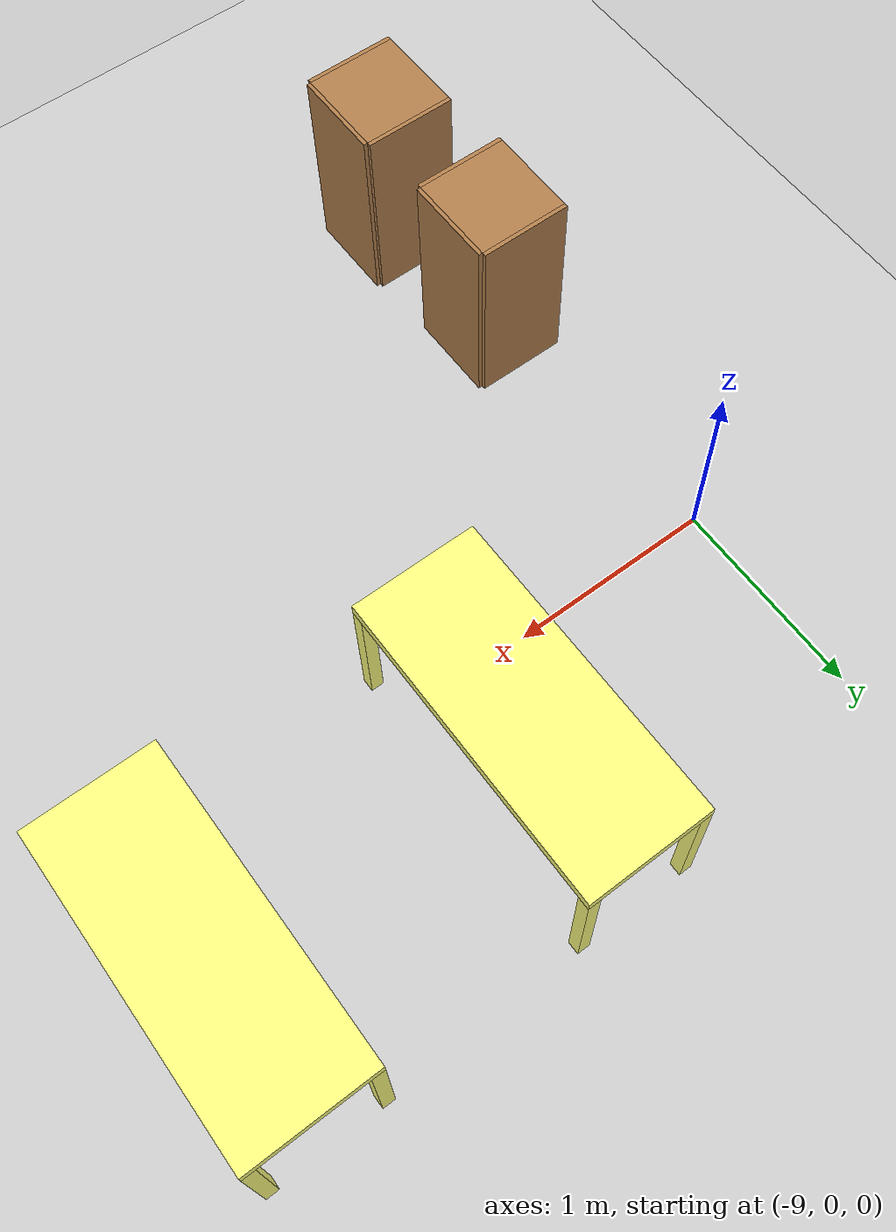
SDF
<sdf version="1.6">
 <world name="default">
  <model name="ground_plane">
   <static>1</static>
   <link name="link">
    <collision name="collision">
     <geometry><plane><normal>0 0 1</normal><size>100 100</size></plane></geometry>
     <surface><friction><ode><mu>100</mu><mu2>50</mu2></ode></friction></surface>
    </collision>
    <visual name="visual">
     <cast_shadows>0</cast_shadows>
     <geometry><plane><normal>0 0 1</normal><size>100 100</size></plane></geometry>
     <material>
      <script><uri>file://media/materials/scripts/gazebo.material</uri><name>Gazebo/Grey</name></script>
     </material>
    </visual>
   </link>
  </model>
  <model name="table_clone_2">
   <link name="link_0">
    <pose>0 2e-06 0.304 0 -0 0</pose>
    <inertial>
     <mass>1</mass>
     <inertia>
      <ixx>0.166667</ixx>
      <ixy>0</ixy>
      <ixz>0</ixz>
      <iyy>0.166667</iyy>
      <iyz>0</iyz>
      <izz>0.166667</izz>
     </inertia>
    </inertial>
    <visual name="visual">
     <geometry><box><size>0.6 1.5 0.06</size></box></geometry>
     <material>
      <lighting>1</lighting>
      <script><uri>file://media/materials/scripts/gazebo.material</uri><name>Gazebo/Grey</name></script>
      <shader type="pixel"><normal_map>__default__</normal_map></shader>
      <ambient>1 1 0.5 1</ambient>
      <diffuse>0.7 0.7 0.7 1</diffuse>
      <specular>0.01 0.01 0.01 1</specular>
      <emissive>0 0 0 1</emissive>
     </material>
    </visual>
    <collision name="collision">
     <geometry><box><size>0.6 1.5 0.06</size></box></geometry>
     <surface>
      <friction>
       <ode><mu>1</mu><mu2>1</mu2><fdir1>0 0 0</fdir1><slip1>0</slip1><slip2>0</slip2></ode>
       <torsional>
        <coefficient>1</coefficient>
        <patch_radius>0</patch_radius>
        <surface_radius>0</surface_radius>
        <use_patch_radius>1</use_patch_radius>
        <ode><slip>0</slip></ode>
       </torsional>
      </friction>
      <bounce><restitution_coefficient>0</restitution_coefficient><threshold>1e+06</threshold></bounce>
      <contact>
       <collide_without_contact>0</collide_without_contact>
       <collide_without_contact_bitmask>1</collide_without_contact_bitmask>
       <collide_bitmask>1</collide_bitmask>
       <ode>
        <soft_cfm>0</soft_cfm>
        <soft_erp>0.2</soft_erp>
        <kp>1e+13</kp>
        <kd>1</kd>
        <max_vel>0.01</max_vel>
        <min_depth>0</min_depth>
       </ode>
       <bullet>
        <split_impulse>1</split_impulse>
        <split_impulse_penetration_threshold>-0.01</split_impulse_penetration_threshold>
        <soft_cfm>0</soft_cfm>
        <soft_erp>0.2</soft_erp>
        <kp>1e+13</kp>
        <kd>1</kd>
       </bullet>
      </contact>
     </surface>
    </collision>
   </link>
   <link name="link_1">
    <pose>0.27 -0.719998 -0.076 0 -0 0</pose>
    <inertial>
     <mass>1</mass>
     <inertia>
      <ixx>0.166667</ixx>
      <ixy>0</ixy>
      <ixz>0</ixz>
      <iyy>0.166667</iyy>
      <iyz>0</iyz>
      <izz>0.166667</izz>
     </inertia>
    </inertial>
    <visual name="visual">
     <geometry><box><size>0.06 0.06 0.7</size></box></geometry>
     <material>
      <lighting>1</lighting>
      <script><uri>file://media/materials/scripts/gazebo.material</uri><name>Gazebo/Grey</name></script>
      <shader type="pixel"><normal_map>__default__</normal_map></shader>
      <ambient>1 1 0.5 1</ambient>
      <diffuse>0.7 0.7 0.7 1</diffuse>
      <specular>0.01 0.01 0.01 1</specular>
      <emissive>0 0 0 1</emissive>
     </material>
    </visual>
    <collision name="collision">
     <geometry><box><size>0.06 0.06 0.7</size></box></geometry>
     <surface>
      <friction>
       <ode><mu>1</mu><mu2>1</mu2><fdir1>0 0 0</fdir1><slip1>0</slip1><slip2>0</slip2></ode>
       <torsional>
        <coefficient>1</coefficient>
        <patch_radius>0</patch_radius>
        <surface_radius>0</surface_radius>
        <use_patch_radius>1</use_patch_radius>
        <ode><slip>0</slip></ode>
       </torsional>
      </friction>
      <bounce><restitution_coefficient>0</restitution_coefficient><threshold>1e+06</threshold></bounce>
      <contact>
       <collide_without_contact>0</collide_without_contact>
       <collide_without_contact_bitmask>1</collide_without_contact_bitmask>
       <collide_bitmask>1</collide_bitmask>
       <ode>
        <soft_cfm>0</soft_cfm>
        <soft_erp>0.2</soft_erp>
        <kp>1e+13</kp>
        <kd>1</kd>
        <max_vel>0.01</max_vel>
        <min_depth>0</min_depth>
       </ode>
       <bullet>
        <split_impulse>1</split_impulse>
        <split_impulse_penetration_threshold>-0.01</split_impulse_penetration_threshold>
        <soft_cfm>0</soft_cfm>
        <soft_erp>0.2</soft_erp>
        <kp>1e+13</kp>
        <kd>1</kd>
       </bullet>
      </contact>
     </surface>
    </collision>
   </link>
   <link name="link_1_clone">
    <pose>-0.27 -0.719998 -0.076 0 -0 0</pose>
    <inertial>
     <mass>1</mass>
     <inertia>
      <ixx>0.166667</ixx>
      <ixy>0</ixy>
      <ixz>0</ixz>
      <iyy>0.166667</iyy>
      <iyz>0</iyz>
      <izz>0.166667</izz>
     </inertia>
    </inertial>
    <visual name="visual">
     <geometry><box><size>0.06 0.06 0.7</size></box></geometry>
     <material>
      <lighting>1</lighting>
      <script><uri>file://media/materials/scripts/gazebo.material</uri><name>Gazebo/Grey</name></script>
      <shader type="pixel"><normal_map>__default__</normal_map></shader>
      <ambient>1 1 0.5 1</ambient>
      <diffuse>0.7 0.7 0.7 1</diffuse>
      <specular>0.01 0.01 0.01 1</specular>
      <emissive>0 0 0 1</emissive>
     </material>
    </visual>
    <collision name="collision">
     <geometry><box><size>0.06 0.06 0.7</size></box></geometry>
     <surface>
      <friction>
       <ode><mu>1</mu><mu2>1</mu2><fdir1>0 0 0</fdir1><slip1>0</slip1><slip2>0</slip2></ode>
       <torsional>
        <coefficient>1</coefficient>
        <patch_radius>0</patch_radius>
        <surface_radius>0</surface_radius>
        <use_patch_radius>1</use_patch_radius>
        <ode><slip>0</slip></ode>
       </torsional>
      </friction>
      <bounce><restitution_coefficient>0</restitution_coefficient><threshold>1e+06</threshold></bounce>
      <contact>
       <collide_without_contact>0</collide_without_contact>
       <collide_without_contact_bitmask>1</collide_without_contact_bitmask>
       <collide_bitmask>1</collide_bitmask>
       <ode>
        <soft_cfm>0</soft_cfm>
        <soft_erp>0.2</soft_erp>
        <kp>1e+13</kp>
        <kd>1</kd>
        <max_vel>0.01</max_vel>
        <min_depth>0</min_depth>
       </ode>
       <bullet>
        <split_impulse>1</split_impulse>
        <split_impulse_penetration_threshold>-0.01</split_impulse_penetration_threshold>
        <soft_cfm>0</soft_cfm>
        <soft_erp>0.2</soft_erp>
        <kp>1e+13</kp>
        <kd>1</kd>
       </bullet>
      </contact>
     </surface>
    </collision>
   </link>
   <link name="link_1_clone_0">
    <pose>0.27 0.720002 -0.076 0 -0 0</pose>
    <inertial>
     <mass>1</mass>
     <inertia>
      <ixx>0.166667</ixx>
      <ixy>0</ixy>
      <ixz>0</ixz>
      <iyy>0.166667</iyy>
      <iyz>0</iyz>
      <izz>0.166667</izz>
     </inertia>
    </inertial>
    <visual name="visual">
     <geometry><box><size>0.06 0.06 0.7</size></box></geometry>
     <material>
      <lighting>1</lighting>
      <script><uri>file://media/materials/scripts/gazebo.material</uri><name>Gazebo/Grey</name></script>
      <shader type="pixel"><normal_map>__default__</normal_map></shader>
      <ambient>1 1 0.5 1</ambient>
      <diffuse>0.7 0.7 0.7 1</diffuse>
      <specular>0.01 0.01 0.01 1</specular>
      <emissive>0 0 0 1</emissive>
     </material>
    </visual>
    <collision name="collision">
     <geometry><box><size>0.06 0.06 0.7</size></box></geometry>
     <surface>
      <friction>
       <ode><mu>1</mu><mu2>1</mu2><fdir1>0 0 0</fdir1><slip1>0</slip1><slip2>0</slip2></ode>
       <torsional>
        <coefficient>1</coefficient>
        <patch_radius>0</patch_radius>
        <surface_radius>0</surface_radius>
        <use_patch_radius>1</use_patch_radius>
        <ode><slip>0</slip></ode>
       </torsional>
      </friction>
      <bounce><restitution_coefficient>0</restitution_coefficient><threshold>1e+06</threshold></bounce>
      <contact>
       <collide_without_contact>0</collide_without_contact>
       <collide_without_contact_bitmask>1</collide_without_contact_bitmask>
       <collide_bitmask>1</collide_bitmask>
       <ode>
        <soft_cfm>0</soft_cfm>
        <soft_erp>0.2</soft_erp>
        <kp>1e+13</kp>
        <kd>1</kd>
        <max_vel>0.01</max_vel>
        <min_depth>0</min_depth>
       </ode>
       <bullet>
        <split_impulse>1</split_impulse>
        <split_impulse_penetration_threshold>-0.01</split_impulse_penetration_threshold>
        <soft_cfm>0</soft_cfm>
        <soft_erp>0.2</soft_erp>
        <kp>1e+13</kp>
        <kd>1</kd>
       </bullet>
      </contact>
     </surface>
    </collision>
   </link>
   <link name="link_1_clone_1">
    <pose>-0.27 0.720002 -0.076 0 -0 0</pose>
    <inertial>
     <mass>1</mass>
     <inertia>
      <ixx>0.166667</ixx>
      <ixy>0</ixy>
      <ixz>0</ixz>
      <iyy>0.166667</iyy>
      <iyz>0</iyz>
      <izz>0.166667</izz>
     </inertia>
    </inertial>
    <visual name="visual">
     <geometry><box><size>0.06 0.06 0.7</size></box></geometry>
     <material>
      <lighting>1</lighting>
      <script><uri>file://media/materials/scripts/gazebo.material</uri><name>Gazebo/Grey</name></script>
      <shader type="pixel"><normal_map>__default__</normal_map></shader>
      <ambient>1 1 0.5 1</ambient>
      <diffuse>0.7 0.7 0.7 1</diffuse>
      <specular>0.01 0.01 0.01 1</specular>
      <emissive>0 0 0 1</emissive>
     </material>
    </visual>
    <collision name="collision">
     <geometry><box><size>0.06 0.06 0.7</size></box></geometry>
     <surface>
      <friction>
       <ode><mu>1</mu><mu2>1</mu2><fdir1>0 0 0</fdir1><slip1>0</slip1><slip2>0</slip2></ode>
       <torsional>
        <coefficient>1</coefficient>
        <patch_radius>0</patch_radius>
        <surface_radius>0</surface_radius>
        <use_patch_radius>1</use_patch_radius>
        <ode><slip>0</slip></ode>
       </torsional>
      </friction>
      <bounce><restitution_coefficient>0</restitution_coefficient><threshold>1e+06</threshold></bounce>
      <contact>
       <collide_without_contact>0</collide_without_contact>
       <collide_without_contact_bitmask>1</collide_without_contact_bitmask>
       <collide_bitmask>1</collide_bitmask>
       <ode>
        <soft_cfm>0</soft_cfm>
        <soft_erp>0.2</soft_erp>
        <kp>1e+13</kp>
        <kd>1</kd>
        <max_vel>0.01</max_vel>
        <min_depth>0</min_depth>
       </ode>
       <bullet>
        <split_impulse>1</split_impulse>
        <split_impulse_penetration_threshold>-0.01</split_impulse_penetration_threshold>
        <soft_cfm>0</soft_cfm>
        <soft_erp>0.2</soft_erp>
        <kp>1e+13</kp>
        <kd>1</kd>
       </bullet>
      </contact>
     </surface>
    </collision>
   </link>
   <joint name="link_0_JOINT_0" type="fixed">
    <parent>link_0</parent>
    <child>link_1</child>
    <physics>
     <ode><limit><cfm>0</cfm><erp>0.2</erp></limit><suspension><cfm>0</cfm><erp>0.2</erp></suspension></ode>
    </physics>
   </joint>
   <joint name="link_0_JOINT_1" type="fixed">
    <parent>link_0</parent>
    <child>link_1_clone</child>
    <physics>
     <ode><limit><cfm>0</cfm><erp>0.2</erp></limit><suspension><cfm>0</cfm><erp>0.2</erp></suspension></ode>
    </physics>
   </joint>
   <joint name="link_0_JOINT_2" type="fixed">
    <parent>link_0</parent>
    <child>link_1_clone_1</child>
    <physics>
     <ode><limit><cfm>0</cfm><erp>0.2</erp></limit><suspension><cfm>0</cfm><erp>0.2</erp></suspension></ode>
    </physics>
   </joint>
   <joint name="link_0_JOINT_3" type="fixed">
    <parent>link_0</parent>
    <child>link_1_clone_0</child>
    <physics>
     <ode><limit><cfm>0</cfm><erp>0.2</erp></limit><suspension><cfm>0</cfm><erp>0.2</erp></suspension></ode>
    </physics>
   </joint>
   <static>0</static>
   <pose>-7.6175 0.488848 0.426 0 2e-06 -0.000239</pose>
  </model>
  <model name="table_clone_3">
   <link name="link_0">
    <pose>0 2e-06 0.304 0 -0 0</pose>
    <inertial>
     <mass>1</mass>
     <inertia>
      <ixx>0.166667</ixx>
      <ixy>0</ixy>
      <ixz>0</ixz>
      <iyy>0.166667</iyy>
      <iyz>0</iyz>
      <izz>0.166667</izz>
     </inertia>
    </inertial>
    <visual name="visual">
     <geometry><box><size>0.6 1.5 0.06</size></box></geometry>
     <material>
      <lighting>1</lighting>
      <script><uri>file://media/materials/scripts/gazebo.material</uri><name>Gazebo/Grey</name></script>
      <shader type="pixel"><normal_map>__default__</normal_map></shader>
      <ambient>1 1 0.5 1</ambient>
      <diffuse>0.7 0.7 0.7 1</diffuse>
      <specular>0.01 0.01 0.01 1</specular>
      <emissive>0 0 0 1</emissive>
     </material>
    </visual>
    <collision name="collision">
     <geometry><box><size>0.6 1.5 0.06</size></box></geometry>
     <surface>
      <friction>
       <ode><mu>1</mu><mu2>1</mu2><fdir1>0 0 0</fdir1><slip1>0</slip1><slip2>0</slip2></ode>
       <torsional>
        <coefficient>1</coefficient>
        <patch_radius>0</patch_radius>
        <surface_radius>0</surface_radius>
        <use_patch_radius>1</use_patch_radius>
        <ode><slip>0</slip></ode>
       </torsional>
      </friction>
      <bounce><restitution_coefficient>0</restitution_coefficient><threshold>1e+06</threshold></bounce>
      <contact>
       <collide_without_contact>0</collide_without_contact>
       <collide_without_contact_bitmask>1</collide_without_contact_bitmask>
       <collide_bitmask>1</collide_bitmask>
       <ode>
        <soft_cfm>0</soft_cfm>
        <soft_erp>0.2</soft_erp>
        <kp>1e+13</kp>
        <kd>1</kd>
        <max_vel>0.01</max_vel>
        <min_depth>0</min_depth>
       </ode>
       <bullet>
        <split_impulse>1</split_impulse>
        <split_impulse_penetration_threshold>-0.01</split_impulse_penetration_threshold>
        <soft_cfm>0</soft_cfm>
        <soft_erp>0.2</soft_erp>
        <kp>1e+13</kp>
        <kd>1</kd>
       </bullet>
      </contact>
     </surface>
    </collision>
   </link>
   <link name="link_1">
    <pose>0.27 -0.719998 -0.076 0 -0 0</pose>
    <inertial>
     <mass>1</mass>
     <inertia>
      <ixx>0.166667</ixx>
      <ixy>0</ixy>
      <ixz>0</ixz>
      <iyy>0.166667</iyy>
      <iyz>0</iyz>
      <izz>0.166667</izz>
     </inertia>
    </inertial>
    <visual name="visual">
     <geometry><box><size>0.06 0.06 0.7</size></box></geometry>
     <material>
      <lighting>1</lighting>
      <script><uri>file://media/materials/scripts/gazebo.material</uri><name>Gazebo/Grey</name></script>
      <shader type="pixel"><normal_map>__default__</normal_map></shader>
      <ambient>1 1 0.5 1</ambient>
      <diffuse>0.7 0.7 0.7 1</diffuse>
      <specular>0.01 0.01 0.01 1</specular>
      <emissive>0 0 0 1</emissive>
     </material>
    </visual>
    <collision name="collision">
     <geometry><box><size>0.06 0.06 0.7</size></box></geometry>
     <surface>
      <friction>
       <ode><mu>1</mu><mu2>1</mu2><fdir1>0 0 0</fdir1><slip1>0</slip1><slip2>0</slip2></ode>
       <torsional>
        <coefficient>1</coefficient>
        <patch_radius>0</patch_radius>
        <surface_radius>0</surface_radius>
        <use_patch_radius>1</use_patch_radius>
        <ode><slip>0</slip></ode>
       </torsional>
      </friction>
      <bounce><restitution_coefficient>0</restitution_coefficient><threshold>1e+06</threshold></bounce>
      <contact>
       <collide_without_contact>0</collide_without_contact>
       <collide_without_contact_bitmask>1</collide_without_contact_bitmask>
       <collide_bitmask>1</collide_bitmask>
       <ode>
        <soft_cfm>0</soft_cfm>
        <soft_erp>0.2</soft_erp>
        <kp>1e+13</kp>
        <kd>1</kd>
        <max_vel>0.01</max_vel>
        <min_depth>0</min_depth>
       </ode>
       <bullet>
        <split_impulse>1</split_impulse>
        <split_impulse_penetration_threshold>-0.01</split_impulse_penetration_threshold>
        <soft_cfm>0</soft_cfm>
        <soft_erp>0.2</soft_erp>
        <kp>1e+13</kp>
        <kd>1</kd>
       </bullet>
      </contact>
     </surface>
    </collision>
   </link>
   <link name="link_1_clone">
    <pose>-0.27 -0.719998 -0.076 0 -0 0</pose>
    <inertial>
     <mass>1</mass>
     <inertia>
      <ixx>0.166667</ixx>
      <ixy>0</ixy>
      <ixz>0</ixz>
      <iyy>0.166667</iyy>
      <iyz>0</iyz>
      <izz>0.166667</izz>
     </inertia>
    </inertial>
    <visual name="visual">
     <geometry><box><size>0.06 0.06 0.7</size></box></geometry>
     <material>
      <lighting>1</lighting>
      <script><uri>file://media/materials/scripts/gazebo.material</uri><name>Gazebo/Grey</name></script>
      <shader type="pixel"><normal_map>__default__</normal_map></shader>
      <ambient>1 1 0.5 1</ambient>
      <diffuse>0.7 0.7 0.7 1</diffuse>
      <specular>0.01 0.01 0.01 1</specular>
      <emissive>0 0 0 1</emissive>
     </material>
    </visual>
    <collision name="collision">
     <geometry><box><size>0.06 0.06 0.7</size></box></geometry>
     <surface>
      <friction>
       <ode><mu>1</mu><mu2>1</mu2><fdir1>0 0 0</fdir1><slip1>0</slip1><slip2>0</slip2></ode>
       <torsional>
        <coefficient>1</coefficient>
        <patch_radius>0</patch_radius>
        <surface_radius>0</surface_radius>
        <use_patch_radius>1</use_patch_radius>
        <ode><slip>0</slip></ode>
       </torsional>
      </friction>
      <bounce><restitution_coefficient>0</restitution_coefficient><threshold>1e+06</threshold></bounce>
      <contact>
       <collide_without_contact>0</collide_without_contact>
       <collide_without_contact_bitmask>1</collide_without_contact_bitmask>
       <collide_bitmask>1</collide_bitmask>
       <ode>
        <soft_cfm>0</soft_cfm>
        <soft_erp>0.2</soft_erp>
        <kp>1e+13</kp>
        <kd>1</kd>
        <max_vel>0.01</max_vel>
        <min_depth>0</min_depth>
       </ode>
       <bullet>
        <split_impulse>1</split_impulse>
        <split_impulse_penetration_threshold>-0.01</split_impulse_penetration_threshold>
        <soft_cfm>0</soft_cfm>
        <soft_erp>0.2</soft_erp>
        <kp>1e+13</kp>
        <kd>1</kd>
       </bullet>
      </contact>
     </surface>
    </collision>
   </link>
   <link name="link_1_clone_0">
    <pose>0.27 0.720002 -0.076 0 -0 0</pose>
    <inertial>
     <mass>1</mass>
     <inertia>
      <ixx>0.166667</ixx>
      <ixy>0</ixy>
      <ixz>0</ixz>
      <iyy>0.166667</iyy>
      <iyz>0</iyz>
      <izz>0.166667</izz>
     </inertia>
    </inertial>
    <visual name="visual">
     <geometry><box><size>0.06 0.06 0.7</size></box></geometry>
     <material>
      <lighting>1</lighting>
      <script><uri>file://media/materials/scripts/gazebo.material</uri><name>Gazebo/Grey</name></script>
      <shader type="pixel"><normal_map>__default__</normal_map></shader>
      <ambient>1 1 0.5 1</ambient>
      <diffuse>0.7 0.7 0.7 1</diffuse>
      <specular>0.01 0.01 0.01 1</specular>
      <emissive>0 0 0 1</emissive>
     </material>
    </visual>
    <collision name="collision">
     <geometry><box><size>0.06 0.06 0.7</size></box></geometry>
     <surface>
      <friction>
       <ode><mu>1</mu><mu2>1</mu2><fdir1>0 0 0</fdir1><slip1>0</slip1><slip2>0</slip2></ode>
       <torsional>
        <coefficient>1</coefficient>
        <patch_radius>0</patch_radius>
        <surface_radius>0</surface_radius>
        <use_patch_radius>1</use_patch_radius>
        <ode><slip>0</slip></ode>
       </torsional>
      </friction>
      <bounce><restitution_coefficient>0</restitution_coefficient><threshold>1e+06</threshold></bounce>
      <contact>
       <collide_without_contact>0</collide_without_contact>
       <collide_without_contact_bitmask>1</collide_without_contact_bitmask>
       <collide_bitmask>1</collide_bitmask>
       <ode>
        <soft_cfm>0</soft_cfm>
        <soft_erp>0.2</soft_erp>
        <kp>1e+13</kp>
        <kd>1</kd>
        <max_vel>0.01</max_vel>
        <min_depth>0</min_depth>
       </ode>
       <bullet>
        <split_impulse>1</split_impulse>
        <split_impulse_penetration_threshold>-0.01</split_impulse_penetration_threshold>
        <soft_cfm>0</soft_cfm>
        <soft_erp>0.2</soft_erp>
        <kp>1e+13</kp>
        <kd>1</kd>
       </bullet>
      </contact>
     </surface>
    </collision>
   </link>
   <link name="link_1_clone_1">
    <pose>-0.27 0.720002 -0.076 0 -0 0</pose>
    <inertial>
     <mass>1</mass>
     <inertia>
      <ixx>0.166667</ixx>
      <ixy>0</ixy>
      <ixz>0</ixz>
      <iyy>0.166667</iyy>
      <iyz>0</iyz>
      <izz>0.166667</izz>
     </inertia>
    </inertial>
    <visual name="visual">
     <geometry><box><size>0.06 0.06 0.7</size></box></geometry>
     <material>
      <lighting>1</lighting>
      <script><uri>file://media/materials/scripts/gazebo.material</uri><name>Gazebo/Grey</name></script>
      <shader type="pixel"><normal_map>__default__</normal_map></shader>
      <ambient>1 1 0.5 1</ambient>
      <diffuse>0.7 0.7 0.7 1</diffuse>
      <specular>0.01 0.01 0.01 1</specular>
      <emissive>0 0 0 1</emissive>
     </material>
    </visual>
    <collision name="collision">
     <geometry><box><size>0.06 0.06 0.7</size></box></geometry>
     <surface>
      <friction>
       <ode><mu>1</mu><mu2>1</mu2><fdir1>0 0 0</fdir1><slip1>0</slip1><slip2>0</slip2></ode>
       <torsional>
        <coefficient>1</coefficient>
        <patch_radius>0</patch_radius>
        <surface_radius>0</surface_radius>
        <use_patch_radius>1</use_patch_radius>
        <ode><slip>0</slip></ode>
       </torsional>
      </friction>
      <bounce><restitution_coefficient>0</restitution_coefficient><threshold>1e+06</threshold></bounce>
      <contact>
       <collide_without_contact>0</collide_without_contact>
       <collide_without_contact_bitmask>1</collide_without_contact_bitmask>
       <collide_bitmask>1</collide_bitmask>
       <ode>
        <soft_cfm>0</soft_cfm>
        <soft_erp>0.2</soft_erp>
        <kp>1e+13</kp>
        <kd>1</kd>
        <max_vel>0.01</max_vel>
        <min_depth>0</min_depth>
       </ode>
       <bullet>
        <split_impulse>1</split_impulse>
        <split_impulse_penetration_threshold>-0.01</split_impulse_penetration_threshold>
        <soft_cfm>0</soft_cfm>
        <soft_erp>0.2</soft_erp>
        <kp>1e+13</kp>
        <kd>1</kd>
       </bullet>
      </contact>
     </surface>
    </collision>
   </link>
   <joint name="link_0_JOINT_0" type="fixed">
    <parent>link_0</parent>
    <child>link_1</child>
    <physics>
     <ode><limit><cfm>0</cfm><erp>0.2</erp></limit><suspension><cfm>0</cfm><erp>0.2</erp></suspension></ode>
    </physics>
   </joint>
   <joint name="link_0_JOINT_1" type="fixed">
    <parent>link_0</parent>
    <child>link_1_clone</child>
    <physics>
     <ode><limit><cfm>0</cfm><erp>0.2</erp></limit><suspension><cfm>0</cfm><erp>0.2</erp></suspension></ode>
    </physics>
   </joint>
   <joint name="link_0_JOINT_2" type="fixed">
    <parent>link_0</parent>
    <child>link_1_clone_1</child>
    <physics>
     <ode><limit><cfm>0</cfm><erp>0.2</erp></limit><suspension><cfm>0</cfm><erp>0.2</erp></suspension></ode>
    </physics>
   </joint>
   <joint name="link_0_JOINT_3" type="fixed">
    <parent>link_0</parent>
    <child>link_1_clone_0</child>
    <physics>
     <ode><limit><cfm>0</cfm><erp>0.2</erp></limit><suspension><cfm>0</cfm><erp>0.2</erp></suspension></ode>
    </physics>
   </joint>
   <static>0</static>
   <pose>-6.10371 0.499148 0.426 0 -1e-06 -0.000235</pose>
  </model>
  <model name="cabinet">
   <static>1</static>
   <link name="cabinet_bottom_plate">
    <inertial>
     <pose>0 0 -1 0 -0 0</pose>
     <inertia><ixx>2.05</ixx><ixy>0</ixy><ixz>0</ixz><iyy>2.05</iyy><iyz>0</iyz><izz>2.05</izz></inertia>
     <mass>25</mass>
    </inertial>
    <collision name="cabinet_bottom_plate_geom">
     <pose>0 0 0.01 0 -0 0</pose>
     <geometry><box><size>0.45 0.45 0.02</size></box></geometry>
    </collision>
    <visual name="cabinet_bottom_plate_geom_visual">
     <pose>0 0 0.01 0 -0 0</pose>
     <geometry><box><size>0.45 0.45 0.02</size></box></geometry>
     <material>
      <script><uri>file://media/materials/scripts/gazebo.material</uri><name>Gazebo/Wood</name></script>
     </material>
    </visual>
    <collision name="cabinet_bottom_plate_geom_cabinet_back_plate">
     <pose>0.235 0 0.51 0 -0 0</pose>
     <geometry><box><size>0.02 0.45 1.02</size></box></geometry>
    </collision>
    <visual name="cabinet_bottom_plate_geom_cabinet_back_plate_visual">
     <pose>0.235 0 0.51 0 -0 0</pose>
     <geometry><box><size>0.02 0.45 1.02</size></box></geometry>
     <material>
      <script><uri>file://media/materials/scripts/gazebo.material</uri><name>Gazebo/Wood</name></script>
     </material>
    </visual>
    <collision name="cabinet_bottom_plate_geom_cabinet_left_plate">
     <pose>0 0.235 0.51 0 -0 0</pose>
     <geometry><box><size>0.45 0.02 1.02</size></box></geometry>
    </collision>
    <visual name="cabinet_bottom_plate_geom_cabinet_left_plate_visual">
     <pose>0 0.235 0.51 0 -0 0</pose>
     <geometry><box><size>0.45 0.02 1.02</size></box></geometry>
     <material>
      <script><uri>file://media/materials/scripts/gazebo.material</uri><name>Gazebo/Wood</name></script>
     </material>
    </visual>
    <collision name="cabinet_bottom_plate_geom_cabinet_middle_plate">
     <pose>0 0 0.51 0 -0 0</pose>
     <geometry><box><size>0.45 0.45 0.02</size></box></geometry>
    </collision>
    <visual name="cabinet_bottom_plate_geom_cabinet_middle_plate_visual">
     <pose>0 0 0.51 0 -0 0</pose>
     <geometry><box><size>0.45 0.45 0.02</size></box></geometry>
     <material>
      <script><uri>file://media/materials/scripts/gazebo.material</uri><name>Gazebo/Wood</name></script>
     </material>
    </visual>
    <collision name="cabinet_bottom_plate_geom_cabinet_right_plate">
     <pose>0 -0.235 0.51 0 -0 0</pose>
     <geometry><box><size>0.45 0.02 1.02</size></box></geometry>
    </collision>
    <visual name="cabinet_bottom_plate_geom_cabinet_right_plate_visual">
     <pose>0 -0.235 0.51 0 -0 0</pose>
     <geometry><box><size>0.45 0.02 1.02</size></box></geometry>
     <material>
      <script><uri>file://media/materials/scripts/gazebo.material</uri><name>Gazebo/Wood</name></script>
     </material>
    </visual>
    <collision name="cabinet_bottom_plate_geom_cabinet_top_plate">
     <pose>0 0 1.01 0 -0 0</pose>
     <geometry><box><size>0.45 0.45 0.02</size></box></geometry>
    </collision>
    <visual name="cabinet_bottom_plate_geom_cabinet_top_plate_visual">
     <pose>0 0 1.01 0 -0 0</pose>
     <geometry><box><size>0.45 0.45 0.02</size></box></geometry>
     <material>
      <script><uri>file://media/materials/scripts/gazebo.material</uri><name>Gazebo/Wood</name></script>
     </material>
    </visual>
   </link>
   <pose>-8.89013 -1.40682 0 0 -0 0</pose>
  </model>
  <model name="cabinet_clone">
   <static>1</static>
   <link name="cabinet_bottom_plate">
    <inertial>
     <pose>0 0 -1 0 -0 0</pose>
     <inertia><ixx>2.05</ixx><ixy>0</ixy><ixz>0</ixz><iyy>2.05</iyy><iyz>0</iyz><izz>2.05</izz></inertia>
     <mass>25</mass>
    </inertial>
    <collision name="cabinet_bottom_plate_geom">
     <pose>0 0 0.01 0 -0 0</pose>
     <geometry><box><size>0.45 0.45 0.02</size></box></geometry>
    </collision>
    <visual name="cabinet_bottom_plate_geom_visual">
     <pose>0 0 0.01 0 -0 0</pose>
     <geometry><box><size>0.45 0.45 0.02</size></box></geometry>
     <material>
      <script><uri>file://media/materials/scripts/gazebo.material</uri><name>Gazebo/Wood</name></script>
     </material>
    </visual>
    <collision name="cabinet_bottom_plate_geom_cabinet_back_plate">
     <pose>0.235 0 0.51 0 -0 0</pose>
     <geometry><box><size>0.02 0.45 1.02</size></box></geometry>
    </collision>
    <visual name="cabinet_bottom_plate_geom_cabinet_back_plate_visual">
     <pose>0.235 0 0.51 0 -0 0</pose>
     <geometry><box><size>0.02 0.45 1.02</size></box></geometry>
     <material>
      <script><uri>file://media/materials/scripts/gazebo.material</uri><name>Gazebo/Wood</name></script>
     </material>
    </visual>
    <collision name="cabinet_bottom_plate_geom_cabinet_left_plate">
     <pose>0 0.235 0.51 0 -0 0</pose>
     <geometry><box><size>0.45 0.02 1.02</size></box></geometry>
    </collision>
    <visual name="cabinet_bottom_plate_geom_cabinet_left_plate_visual">
     <pose>0 0.235 0.51 0 -0 0</pose>
     <geometry><box><size>0.45 0.02 1.02</size></box></geometry>
     <material>
      <script><uri>file://media/materials/scripts/gazebo.material</uri><name>Gazebo/Wood</name></script>
     </material>
    </visual>
    <collision name="cabinet_bottom_plate_geom_cabinet_middle_plate">
     <pose>0 0 0.51 0 -0 0</pose>
     <geometry><box><size>0.45 0.45 0.02</size></box></geometry>
    </collision>
    <visual name="cabinet_bottom_plate_geom_cabinet_middle_plate_visual">
     <pose>0 0 0.51 0 -0 0</pose>
     <geometry><box><size>0.45 0.45 0.02</size></box></geometry>
     <material>
      <script><uri>file://media/materials/scripts/gazebo.material</uri><name>Gazebo/Wood</name></script>
     </material>
    </visual>
    <collision name="cabinet_bottom_plate_geom_cabinet_right_plate">
     <pose>0 -0.235 0.51 0 -0 0</pose>
     <geometry><box><size>0.45 0.02 1.02</size></box></geometry>
    </collision>
    <visual name="cabinet_bottom_plate_geom_cabinet_right_plate_visual">
     <pose>0 -0.235 0.51 0 -0 0</pose>
     <geometry><box><size>0.45 0.02 1.02</size></box></geometry>
     <material>
      <script><uri>file://media/materials/scripts/gazebo.material</uri><name>Gazebo/Wood</name></script>
     </material>
    </visual>
    <collision name="cabinet_bottom_plate_geom_cabinet_top_plate">
     <pose>0 0 1.01 0 -0 0</pose>
     <geometry><box><size>0.45 0.45 0.02</size></box></geometry>
    </collision>
    <visual name="cabinet_bottom_plate_geom_cabinet_top_plate_visual">
     <pose>0 0 1.01 0 -0 0</pose>
     <geometry><box><size>0.45 0.45 0.02</size></box></geometry>
     <material>
      <script><uri>file://media/materials/scripts/gazebo.material</uri><name>Gazebo/Wood</name></script>
     </material>
    </visual>
   </link>
   <pose>-8.85156 -2.20508 0 0 -0 0</pose>
  </model>
 </world>
</sdf>
